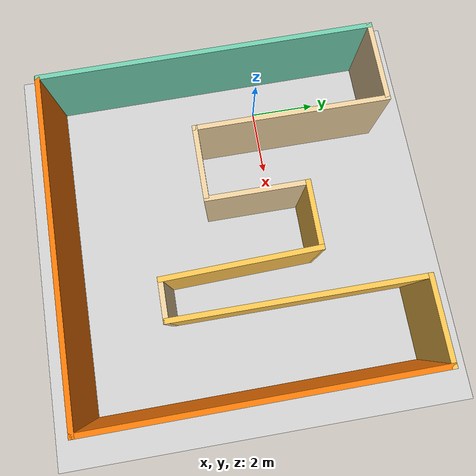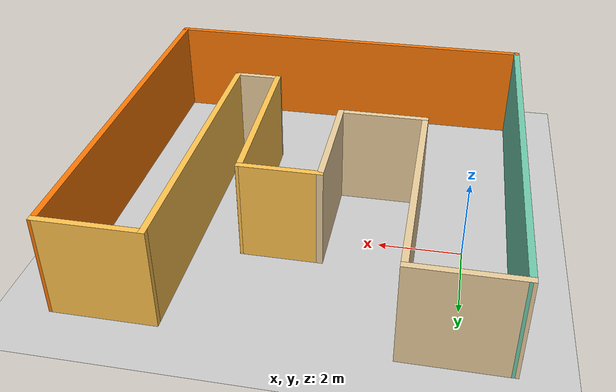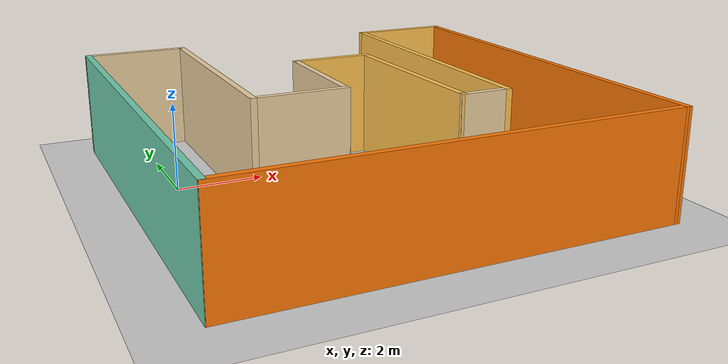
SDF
<sdf version="1.6">
 <world name="default">
  <light name="sun" type="directional">
   <pose>0 0 15 0 -0 0</pose>
   <diffuse>1 1 1 1</diffuse>
   <specular>0.1 0.1 0.1 1</specular>
   <attenuation>
    <range>1000</range>
    <constant>0.9</constant>
    <linear>0.01</linear>
    <quadratic>0.001</quadratic>
   </attenuation>
   <direction>-0.5 0.5 -1</direction>
  </light>
  <model name="ground_plane">
   <static>1</static>
   <link name="link">
    <collision name="collision">
     <geometry><plane><normal>0 0 1</normal><size>100 100</size></plane></geometry>
     <surface><friction><ode><mu>100</mu><mu2>50</mu2></ode></friction></surface>
    </collision>
    <visual name="visual">
     <transparency>1</transparency>
     <cast_shadows>0</cast_shadows>
     <geometry><plane><normal>0 0 1</normal><size>100 100</size></plane></geometry>
     <material>
      <script><uri>file://media/materials/scripts/gazebo.material</uri><name>Gazebo/Grey</name></script>
     </material>
    </visual>
   </link>
  </model>
  <gravity>0 0 -9.8</gravity>
  <magnetic_field>6e-06 2.3e-05 -4.2e-05</magnetic_field>
  <atmosphere type="adiabatic"/>
  <physics name="default_physics" default="0" type="ode">
   <max_step_size>0.001</max_step_size>
   <real_time_factor>1</real_time_factor>
   <real_time_update_rate>1000</real_time_update_rate>
  </physics>
  <scene><ambient>0.4 0.4 0.4 1</ambient><background>0.7 0.7 0.7 1</background><shadows>1</shadows></scene>
  <spherical_coordinates>
   <surface_model>EARTH_WGS84</surface_model>
   <latitude_deg>0</latitude_deg>
   <longitude_deg>0</longitude_deg>
   <elevation>0</elevation>
   <heading_deg>0</heading_deg>
  </spherical_coordinates>
  <model name="Untitled">
   <pose>3.79374 -1.31814 0 0 -0 0</pose>
   <link name="Wall_0">
    <collision name="Wall_0_Collision">
     <geometry><box><size>2.5 0.15 2.5</size></box></geometry>
     <pose>0 0 1.25 0 -0 0</pose>
    </collision>
    <visual name="Wall_0_Visual">
     <pose>0 0 1.25 0 -0 0</pose>
     <geometry><box><size>2.5 0.15 2.5</size></box></geometry>
     <material>
      <script><uri>file://media/materials/scripts/gazebo.material</uri><name>Gazebo/Grey</name></script>
      <ambient>0.921569 0.807843 0.615686 1</ambient>
     </material>
    </visual>
    <pose>-3.78301 4.93156 0 0 -0 0</pose>
   </link>
   <link name="Wall_11">
    <collision name="Wall_11_Collision">
     <geometry><box><size>7.25 0.15 2.5</size></box></geometry>
     <pose>0 0 1.25 0 -0 0</pose>
    </collision>
    <visual name="Wall_11_Visual">
     <pose>0 0 1.25 0 -0 0</pose>
     <geometry><box><size>7.25 0.15 2.5</size></box></geometry>
     <material>
      <script><uri>file://media/materials/scripts/gazebo.material</uri><name>Gazebo/Grey</name></script>
      <ambient>1 0.764706 0.305882 1</ambient>
     </material>
    </visual>
    <pose>2.56844 1.32866 0 0 0 -1.5708</pose>
   </link>
   <link name="Wall_13">
    <collision name="Wall_13_Collision">
     <geometry><box><size>5.75 0.15 2.5</size></box></geometry>
     <pose>0 0 1.25 0 -0 0</pose>
    </collision>
    <visual name="Wall_13_Visual">
     <pose>0 0 1.25 0 -0 0</pose>
     <geometry><box><size>5.75 0.15 2.5</size></box></geometry>
     <material>
      <script><uri>file://media/materials/scripts/gazebo.material</uri><name>Gazebo/Grey</name></script>
      <ambient>0.921569 0.807843 0.615686 1</ambient>
     </material>
    </visual>
    <pose>-2.60801 2.13156 0 0 0 -1.5708</pose>
   </link>
   <link name="Wall_14">
    <collision name="Wall_14_Collision">
     <geometry><box><size>2.25 0.15 2.5</size></box></geometry>
     <pose>0 0 1.25 0 -0 0</pose>
    </collision>
    <visual name="Wall_14_Visual">
     <pose>0 0 1.25 0 -0 0</pose>
     <geometry><box><size>2.25 0.15 2.5</size></box></geometry>
     <material>
      <script><uri>file://media/materials/scripts/gazebo.material</uri><name>Gazebo/Grey</name></script>
      <ambient>0.921569 0.807843 0.615686 1</ambient>
     </material>
    </visual>
    <pose>-1.55801 -0.668437 0 0 -0 0</pose>
   </link>
   <link name="Wall_15">
    <collision name="Wall_15_Collision">
     <geometry><box><size>3 0.15 2.5</size></box></geometry>
     <pose>0 0 1.25 0 -0 0</pose>
    </collision>
    <visual name="Wall_15_Visual">
     <pose>0 0 1.25 0 -0 0</pose>
     <geometry><box><size>3 0.15 2.5</size></box></geometry>
     <material>
      <script><uri>file://media/materials/scripts/gazebo.material</uri><name>Gazebo/Grey</name></script>
      <ambient>0.921569 0.807843 0.615686 1</ambient>
     </material>
    </visual>
    <pose>-0.508013 0.756563 0 0 -0 1.5708</pose>
   </link>
   <link name="Wall_16">
    <collision name="Wall_16_Collision">
     <geometry><box><size>2 0.15 2.5</size></box></geometry>
     <pose>0 0 1.25 0 -0 0</pose>
    </collision>
    <visual name="Wall_16_Visual">
     <pose>0 0 1.25 0 -0 0</pose>
     <geometry><box><size>2 0.15 2.5</size></box></geometry>
     <material>
      <script><uri>file://media/materials/scripts/gazebo.material</uri><name>Gazebo/Grey</name></script>
      <ambient>1 0.764706 0.305882 1</ambient>
     </material>
    </visual>
    <pose>0.416987 2.18156 0 0 -0 0</pose>
   </link>
   <link name="Wall_17">
    <collision name="Wall_17_Collision">
     <geometry><box><size>4.55471 0.15 2.5</size></box></geometry>
     <pose>0 0 1.25 0 -0 0</pose>
    </collision>
    <visual name="Wall_17_Visual">
     <pose>0 0 1.25 0 -0 0</pose>
     <geometry><box><size>4.55471 0.15 2.5</size></box></geometry>
     <material>
      <script><uri>file://media/materials/scripts/gazebo.material</uri><name>Gazebo/Grey</name></script>
      <ambient>1 0.764706 0.305882 1</ambient>
     </material>
    </visual>
    <pose>1.40521 -0.019887 0 0 0 -1.54208</pose>
   </link>
   <link name="Wall_18">
    <collision name="Wall_18_Collision">
     <geometry><box><size>1.25 0.15 2.5</size></box></geometry>
     <pose>0 0 1.25 0 -0 0</pose>
    </collision>
    <visual name="Wall_18_Visual">
     <pose>0 0 1.25 0 -0 0</pose>
     <geometry><box><size>1.25 0.15 2.5</size></box></geometry>
     <material>
      <script><uri>file://media/materials/scripts/gazebo.material</uri><name>Gazebo/Grey</name></script>
      <ambient>0.921569 0.807843 0.615686 1</ambient>
     </material>
    </visual>
    <pose>2.01844 -2.22134 0 0 -0 0</pose>
   </link>
   <link name="Wall_4">
    <collision name="Wall_4_Collision">
     <geometry><box><size>10.0001 0.15 2.5</size></box></geometry>
     <pose>0 0 1.25 0 -0 0</pose>
    </collision>
    <visual name="Wall_4_Visual">
     <pose>0 0 1.25 0 -0 0</pose>
     <geometry><box><size>10.0001 0.15 2.5</size></box></geometry>
     <material>
      <script><uri>file://media/materials/scripts/gazebo.material</uri><name>Gazebo/Grey</name></script>
      <ambient>0.435294 0.796078 0.67451 1</ambient>
     </material>
    </visual>
    <pose>-4.93156 0.006563 0 0 -0 1.57617</pose>
   </link>
   <link name="Wall_6">
    <collision name="Wall_6_Collision">
     <geometry><box><size>10 0.15 2.5</size></box></geometry>
     <pose>0 0 1.25 0 -0 0</pose>
    </collision>
    <visual name="Wall_6_Visual">
     <pose>0 0 1.25 0 -0 0</pose>
     <geometry><box><size>10 0.15 2.5</size></box></geometry>
     <material>
      <script><uri>file://media/materials/scripts/gazebo.material</uri><name>Gazebo/Grey</name></script>
      <ambient>0.996078 0.47451 0.0196078 1</ambient>
     </material>
    </visual>
    <pose>0.033112 -4.93166 0 0 -0 0</pose>
   </link>
   <link name="Wall_8">
    <collision name="Wall_8_Collision">
     <geometry><box><size>9.9604 0.15 2.5</size></box></geometry>
     <pose>0 0 1.25 0 -0 0</pose>
    </collision>
    <visual name="Wall_8_Visual">
     <pose>0 0 1.25 0 -0 0</pose>
     <geometry><box><size>9.9604 0.15 2.5</size></box></geometry>
     <material>
      <script><uri>file://media/materials/scripts/gazebo.material</uri><name>Gazebo/Grey</name></script>
      <ambient>0.996078 0.47451 0.0196078 1</ambient>
     </material>
    </visual>
    <pose>4.93827 -0.026499 0 0 -0 1.57484</pose>
   </link>
   <link name="Wall_9">
    <collision name="Wall_9_Collision">
     <geometry><box><size>2.5 0.15 2.5</size></box></geometry>
     <pose>0 0 1.25 0 -0 0</pose>
    </collision>
    <visual name="Wall_9_Visual">
     <pose>0 0 1.25 0 -0 0</pose>
     <geometry><box><size>2.5 0.15 2.5</size></box></geometry>
     <material>
      <script><uri>file://media/materials/scripts/gazebo.material</uri><name>Gazebo/Grey</name></script>
      <ambient>1 0.764706 0.305882 1</ambient>
     </material>
    </visual>
    <pose>3.74344 4.87866 0 0 -0 3.14159</pose>
   </link>
   <static>1</static>
  </model>
 </world>
</sdf>
